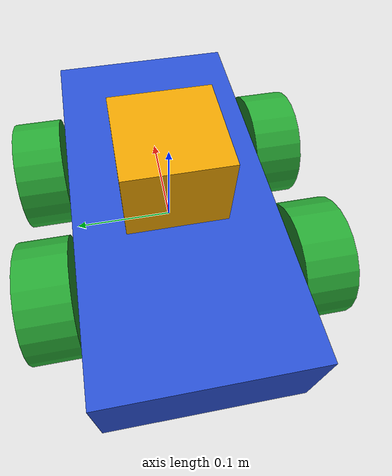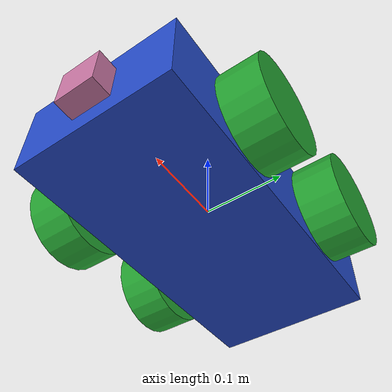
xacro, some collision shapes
<?xml version='1.0'?>

<robot name="my_robot" xmlns:xacro="http://www.ros.org/wiki/xacro">
  <xacro:include filename="$(find my_robot)/urdf/my_robot.gazebo" />

  <link name="base_link"></link>

  <joint name="robot_footprint_joint" type="fixed">
    <origin xyz="0 0 0" rpy="0 0 0" />
    <parent link="base_link"/>
    <child link="chassis" />
  </joint>

  <link name='chassis'>
    <pose>0 0 0.1 0 0 0</pose>

    <inertial>
      <mass value="15.0"/>
      <origin xyz="0.0 0 0" rpy=" 0 0 0"/>
      <inertia
          ixx="0.1" ixy="0" ixz="0"
          iyy="0.1" iyz="0"
          izz="0.1"
      />
    </inertial>

    <collision name='collision'>
      <origin xyz="0 0 0" rpy=" 0 0 0"/>
      <geometry>
        <box size=".4 .2 .1"/>
      </geometry>
    </collision>

    <visual name='chassis_visual'>
      <origin xyz="0 0 0" rpy=" 0 0 0"/>
      <geometry>
        <box size=".4 .2 .1"/>
      </geometry>
    </visual>
  </link>

  <link name='front_left_wheel'>
    <inertial>
      <mass value="5.0"/>
      <origin xyz="0 0 0" rpy="0 1.5707 1.5707"/>
      <inertia
          ixx="0.1" ixy="0" ixz="0"
          iyy="0.1" iyz="0"
          izz="0.1"
      />
    </inertial>

    <collision name='front_left_wheel_collision'>
      <origin xyz="0 0 0" rpy="0 1.5707 1.5707"/>
      <geometry>
        <cylinder radius="0.06" length="0.05"/>
      </geometry>
    </collision>

    <visual name='front_left_wheel_visual'>
      <origin xyz="0 0 0" rpy="0 1.5707 1.5707"/>
      <geometry>
        <cylinder radius="0.06" length="0.05"/>
      </geometry>
    </visual>
  </link>

  <link name='front_right_wheel'>
    <inertial>
      <mass value="5.0"/>
      <origin xyz="0 0 0" rpy="0 1.5707 1.5707"/>
      <inertia
          ixx="0.1" ixy="0" ixz="0"
          iyy="0.1" iyz="0"
          izz="0.1"
      />
    </inertial>

    <collision name='front_right_wheel_collision'>
      <origin xyz="0 0 0" rpy="0 1.5707 1.5707"/>
      <geometry>
        <cylinder radius="0.06" length="0.05"/>
      </geometry>
    </collision>

    <visual name='front_right_wheel_visual'>
      <origin xyz="0 0 0" rpy="0 1.5707 1.5707"/>
      <geometry>
        <cylinder radius="0.06" length="0.05"/>
      </geometry>
    </visual>
  </link>

  <link name='rear_left_wheel'>
    <inertial>
      <mass value="5.0"/>
      <origin xyz="0 0 0" rpy="0 1.5707 1.5707"/>
      <inertia
          ixx="0.1" ixy="0" ixz="0"
          iyy="0.1" iyz="0"
          izz="0.1"
      />
    </inertial>

    <collision name='rear_left_wheel_collision'>
      <origin xyz="0 0 0" rpy="0 1.5707 1.5707"/>
      <geometry>
        <cylinder radius="0.06" length="0.05"/>
      </geometry>
    </collision>

    <visual name='rear_left_wheel_visual'>
      <origin xyz="0 0 0" rpy="0 1.5707 1.5707"/>
      <geometry>
        <cylinder radius="0.06" length="0.05"/>
      </geometry>
    </visual>
  </link>

  <link name='rear_right_wheel'>
    <inertial>
      <mass value="5.0"/>
      <origin xyz="0 0 0" rpy="0 1.5707 1.5707"/>
      <inertia
          ixx="0.1" ixy="0" ixz="0"
          iyy="0.1" iyz="0"
          izz="0.1"
      />
    </inertial>

    <collision name='rear_right_wheel_collision'>
      <origin xyz="0 0 0" rpy="0 1.5707 1.5707"/>
      <geometry>
        <cylinder radius="0.06" length="0.05"/>
      </geometry>
    </collision>

    <visual name='rear_right_wheel_visual'>
      <origin xyz="0 0 0" rpy="0 1.5707 1.5707"/>
      <geometry>
        <cylinder radius="0.06" length="0.05"/>
      </geometry>
    </visual>
  </link>

  <joint type="continuous" name="front_left_wheel_hinge">
    <origin xyz="0.08 0.13 0" rpy="0 0 0"/>
    <child link="front_left_wheel"/>
    <parent link="chassis"/>
    <axis xyz="0 1 0" rpy="0 0 0"/>
    <limit effort="10000" velocity="1000"/>
    <dynamics damping="1.0" friction="1.0"/>
  </joint>

  <joint type="continuous" name="front_right_wheel_hinge">
    <origin xyz="0.08 -0.13 0" rpy="0 0 0"/>
    <child link="front_right_wheel"/>
    <parent link="chassis"/>
    <axis xyz="0 1 0" rpy="0 0 0"/>
    <limit effort="10000" velocity="1000"/>
    <dynamics damping="1.0" friction="1.0"/>
  </joint>

  <joint type="continuous" name="rear_left_wheel_hinge">
    <origin xyz="-0.08 0.13 0" rpy="0 0 0"/>
    <child link="rear_left_wheel"/>
    <parent link="chassis"/>
    <axis xyz="0 1 0" rpy="0 0 0"/>
    <limit effort="10000" velocity="1000"/>
    <dynamics damping="1.0" friction="1.0"/>
  </joint>

  <joint type="continuous" name="rear_right_wheel_hinge">
    <origin xyz="-0.08 -0.13 0" rpy="0 0 0"/>
    <child link="rear_right_wheel"/>
    <parent link="chassis"/>
    <axis xyz="0 1 0" rpy="0 0 0"/>
    <limit effort="10000" velocity="1000"/>
    <dynamics damping="1.0" friction="1.0"/>
  </joint>

  <link name='camera_link'>
    <inertial>
      <mass value="0.1"/>
      <origin xyz="0 0 0" rpy="0 0 0"/>
      <box_inertia
          m="0.1" x="0.05" y="0.05" z="0.05"
      />
      <inertia
          ixx="1e-6" ixy="0" ixz="0"
          iyy="1e-6" iyz="0"
          izz="1e-6"
      />
    </inertial>

    <collision name='camera_collision'>
      <origin xyz="0 0 0" rpy="0 0 0"/>
      <geometry>
        <box size="0.05 0.05 0.05"/>
      </geometry>
    </collision>

    <visual name='camera_visual'>
      <origin xyz="0 0 0" rpy="0 0 0"/>
      <geometry>
        <box size="0.05 0.05 0.05"/>
      </geometry>
    </visual>
  </link>

  <joint type="fixed" name="camera_joint">
    <origin xyz="0.2 0 0" rpy="0 0 0"/>
    <child link="camera_link"/>
    <parent link="chassis"/>
    <axis xyz="0 1 0" rpy="0 0 0"/>
  </joint>

  <joint name="camera_optical_joint" type="fixed">
    <origin xyz="0 0 0" rpy="-1.5707 0 -1.5707"/>
    <parent link="camera_link"/>
    <child link="camera_link_optical"/>
  </joint>

  <link name="camera_link_optical">
  </link>

  <link name='hokuyo'>
    <inertial>
      <mass value="0.1"/>
      <origin xyz="0 0 0" rpy="0 0 0"/>
      <box_inertia
          m="1e-5" x="0.1" y="0.1" z="0.01"
      />
      <inertia
          ixx="1e-6" ixy="0" ixz="0"
          iyy="1e-6" iyz="0"
          izz="1e-6"
      />
    </inertial>

    <collision name='hokuyo_collision'>
      <origin xyz="0 0 0" rpy="0 0 0"/>
      <geometry>
        <box size="0.1 0.1 0.1"/>
      </geometry>
    </collision>

    <visual name='hokuyo_visual'>
      <origin xyz="0 0 0" rpy="0 0 0"/>
      <geometry>
	<mesh filename = "package://my_robot/meshes/hokuyo.dae"/>
      </geometry>
    </visual>
  </link>

  <joint type="fixed" name="hokuyo_joint">
    <origin xyz="0.0 0 0.08" rpy="0 0 0"/>
    <child link="hokuyo"/>
    <parent link="chassis"/>
    <axis xyz="0 1 0" rpy="0 0 0"/>
  </joint>

  <gazebo reference="front_left_wheel">
    <material>Gazebo/Green</material>
  </gazebo>

  <gazebo reference="front_right_wheel">
    <material>Gazebo/Green</material>
  </gazebo>

  <gazebo reference="rear_left_wheel">
    <material>Gazebo/Green</material>
  </gazebo>

  <gazebo reference="rear_right_wheel">
    <material>Gazebo/Green</material>
  </gazebo>

  <gazebo reference="chassis">
    <material>Gazebo/Blue</material>
  </gazebo>

  <gazebo reference="camera">
    <material>Gazebo/Red</material>
  </gazebo>

</robot>
